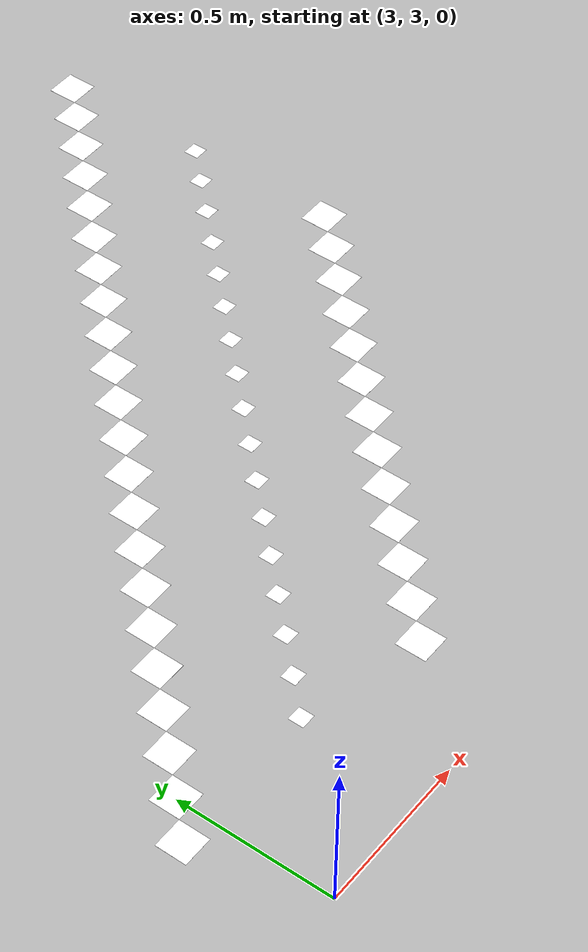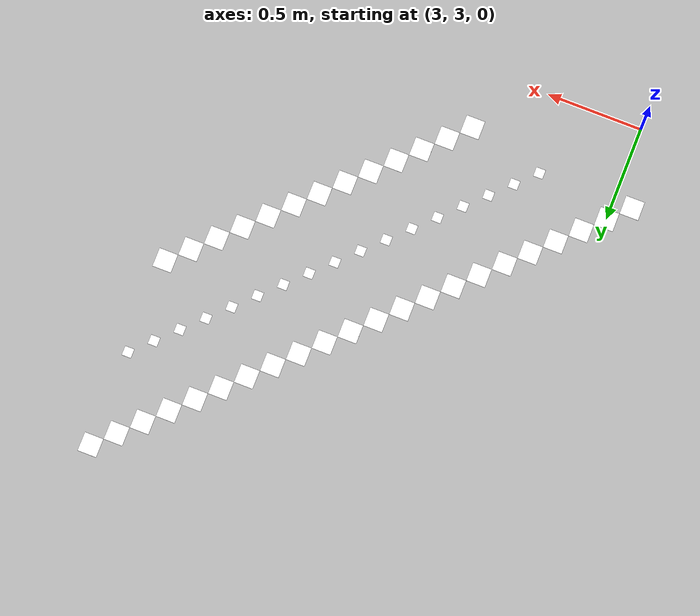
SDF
<sdf version="1.5">
 <model name="AutoNOMOS_mini_intersection">
  <static>true</static>
  <link name="L1_p2.9">
   <pose>2.9 3.4 0.011 0 0 0</pose>
   <visual name="visual_L1_p2.9">
    <cast_shadows>false</cast_shadows>
    <geometry><plane><normal>0 0 1</normal><size>.1 .1</size></plane></geometry>
    <material>
     <ambient>0 0 0 0</ambient>
     <diffuse>1 1 1 0</diffuse>
     <specular>0 0 0 0</specular>
     <emissive>0 0 0 0</emissive>
    </material>
   </visual>
  </link>
  <link name="L1_p3">
   <pose>3 3.5 0.011 0 0 0</pose>
   <visual name="visual_L1_p3">
    <cast_shadows>false</cast_shadows>
    <geometry><plane><normal>0 0 1</normal><size>.1 .1</size></plane></geometry>
    <material>
     <ambient>0 0 0 0</ambient>
     <diffuse>1 1 1 0</diffuse>
     <specular>0 0 0 0</specular>
     <emissive>0 0 0 0</emissive>
    </material>
   </visual>
  </link>
  <link name="L1_p3.1">
   <pose>3.1 3.6 0.011 0 0 0</pose>
   <visual name="visual_L1_p3.1">
    <cast_shadows>false</cast_shadows>
    <geometry><plane><normal>0 0 1</normal><size>.1 .1</size></plane></geometry>
    <material>
     <ambient>0 0 0 0</ambient>
     <diffuse>1 1 1 0</diffuse>
     <specular>0 0 0 0</specular>
     <emissive>0 0 0 0</emissive>
    </material>
   </visual>
  </link>
  <link name="L1_p3.2">
   <pose>3.2 3.7 0.011 0 0 0</pose>
   <visual name="visual_L1_p3.2">
    <cast_shadows>false</cast_shadows>
    <geometry><plane><normal>0 0 1</normal><size>.1 .1</size></plane></geometry>
    <material>
     <ambient>0 0 0 0</ambient>
     <diffuse>1 1 1 0</diffuse>
     <specular>0 0 0 0</specular>
     <emissive>0 0 0 0</emissive>
    </material>
   </visual>
  </link>
  <link name="L1_p3.3">
   <pose>3.3 3.8 0.011 0 0 0</pose>
   <visual name="visual_L1_p3.3">
    <cast_shadows>false</cast_shadows>
    <geometry><plane><normal>0 0 1</normal><size>.1 .1</size></plane></geometry>
    <material>
     <ambient>0 0 0 0</ambient>
     <diffuse>1 1 1 0</diffuse>
     <specular>0 0 0 0</specular>
     <emissive>0 0 0 0</emissive>
    </material>
   </visual>
  </link>
  <link name="L1_p85">
   <pose>3.4 3.4 0.011 0 0 0</pose>
   <visual name="visual_L1_p85">
    <cast_shadows>false</cast_shadows>
    <geometry><plane><normal>0 0 1</normal><size>.05 .05</size></plane></geometry>
    <material>
     <ambient>0 0 0 0</ambient>
     <diffuse>1 1 1 0</diffuse>
     <specular>0 0 0 0</specular>
     <emissive>0 0 0 0</emissive>
    </material>
   </visual>
  </link>
  <link name="L1_p3.4">
   <pose>3.4 3.9 0.011 0 0 0</pose>
   <visual name="visual_L1_p3.4">
    <cast_shadows>false</cast_shadows>
    <geometry><plane><normal>0 0 1</normal><size>.1 .1</size></plane></geometry>
    <material>
     <ambient>0 0 0 0</ambient>
     <diffuse>1 1 1 0</diffuse>
     <specular>0 0 0 0</specular>
     <emissive>0 0 0 0</emissive>
    </material>
   </visual>
  </link>
  <link name="L1_p86">
   <pose>3.5 3.5 0.011 0 0 0</pose>
   <visual name="visual_L1_p86">
    <cast_shadows>false</cast_shadows>
    <geometry><plane><normal>0 0 1</normal><size>.05 .05</size></plane></geometry>
    <material>
     <ambient>0 0 0 0</ambient>
     <diffuse>1 1 1 0</diffuse>
     <specular>0 0 0 0</specular>
     <emissive>0 0 0 0</emissive>
    </material>
   </visual>
  </link>
  <link name="L1_p3.5">
   <pose>3.5 4 0.011 0 0 0</pose>
   <visual name="visual_L1_p3.5">
    <cast_shadows>false</cast_shadows>
    <geometry><plane><normal>0 0 1</normal><size>.1 .1</size></plane></geometry>
    <material>
     <ambient>0 0 0 0</ambient>
     <diffuse>1 1 1 0</diffuse>
     <specular>0 0 0 0</specular>
     <emissive>0 0 0 0</emissive>
    </material>
   </visual>
  </link>
  <link name="L1_p87">
   <pose>3.6 3.6 0.011 0 0 0</pose>
   <visual name="visual_L1_p87">
    <cast_shadows>false</cast_shadows>
    <geometry><plane><normal>0 0 1</normal><size>.05 .05</size></plane></geometry>
    <material>
     <ambient>0 0 0 0</ambient>
     <diffuse>1 1 1 0</diffuse>
     <specular>0 0 0 0</specular>
     <emissive>0 0 0 0</emissive>
    </material>
   </visual>
  </link>
  <link name="L1_p3.6">
   <pose>3.6 4.1 0.011 0 0 0</pose>
   <visual name="visual_L1_p3.6">
    <cast_shadows>false</cast_shadows>
    <geometry><plane><normal>0 0 1</normal><size>.1 .1</size></plane></geometry>
    <material>
     <ambient>0 0 0 0</ambient>
     <diffuse>1 1 1 0</diffuse>
     <specular>0 0 0 0</specular>
     <emissive>0 0 0 0</emissive>
    </material>
   </visual>
  </link>
  <link name="L1_p88">
   <pose>3.7 3.7 0.011 0 0 0</pose>
   <visual name="visual_L1_p88">
    <cast_shadows>false</cast_shadows>
    <geometry><plane><normal>0 0 1</normal><size>.05 .05</size></plane></geometry>
    <material>
     <ambient>0 0 0 0</ambient>
     <diffuse>1 1 1 0</diffuse>
     <specular>0 0 0 0</specular>
     <emissive>0 0 0 0</emissive>
    </material>
   </visual>
  </link>
  <link name="L1_p3.7">
   <pose>3.7 4.2 0.011 0 0 0</pose>
   <visual name="visual_L1_p3.7">
    <cast_shadows>false</cast_shadows>
    <geometry><plane><normal>0 0 1</normal><size>.1 .1</size></plane></geometry>
    <material>
     <ambient>0 0 0 0</ambient>
     <diffuse>1 1 1 0</diffuse>
     <specular>0 0 0 0</specular>
     <emissive>0 0 0 0</emissive>
    </material>
   </visual>
  </link>
  <link name="L1_p89">
   <pose>3.8 3.8 0.011 0 0 0</pose>
   <visual name="visual_L1_p89">
    <cast_shadows>false</cast_shadows>
    <geometry><plane><normal>0 0 1</normal><size>.05 .05</size></plane></geometry>
    <material>
     <ambient>0 0 0 0</ambient>
     <diffuse>1 1 1 0</diffuse>
     <specular>0 0 0 0</specular>
     <emissive>0 0 0 0</emissive>
    </material>
   </visual>
  </link>
  <link name="L1_p3.8">
   <pose>3.8 4.3 0.011 0 0 0</pose>
   <visual name="visual_L1_p3.8">
    <cast_shadows>false</cast_shadows>
    <geometry><plane><normal>0 0 1</normal><size>.1 .1</size></plane></geometry>
    <material>
     <ambient>0 0 0 0</ambient>
     <diffuse>1 1 1 0</diffuse>
     <specular>0 0 0 0</specular>
     <emissive>0 0 0 0</emissive>
    </material>
   </visual>
  </link>
  <link name="L1_p4.3">
   <pose>3.8 3.3 0.011 0 0 0</pose>
   <visual name="visual_L1_p4.3">
    <cast_shadows>false</cast_shadows>
    <geometry><plane><normal>0 0 1</normal><size>.1 .1</size></plane></geometry>
    <material>
     <ambient>0 0 0 0</ambient>
     <diffuse>1 1 1 0</diffuse>
     <specular>0 0 0 0</specular>
     <emissive>0 0 0 0</emissive>
    </material>
   </visual>
  </link>
  <link name="L1_p90">
   <pose>3.9 3.9 0.011 0 0 0</pose>
   <visual name="visual_L1_p90">
    <cast_shadows>false</cast_shadows>
    <geometry><plane><normal>0 0 1</normal><size>.05 .05</size></plane></geometry>
    <material>
     <ambient>0 0 0 0</ambient>
     <diffuse>1 1 1 0</diffuse>
     <specular>0 0 0 0</specular>
     <emissive>0 0 0 0</emissive>
    </material>
   </visual>
  </link>
  <link name="L1_p3.9">
   <pose>3.9 4.4 0.011 0 0 0</pose>
   <visual name="visual_L1_p3.9">
    <cast_shadows>false</cast_shadows>
    <geometry><plane><normal>0 0 1</normal><size>.1 .1</size></plane></geometry>
    <material>
     <ambient>0 0 0 0</ambient>
     <diffuse>1 1 1 0</diffuse>
     <specular>0 0 0 0</specular>
     <emissive>0 0 0 0</emissive>
    </material>
   </visual>
  </link>
  <link name="L1_p4.4">
   <pose>3.9 3.4 0.011 0 0 0</pose>
   <visual name="visual_L1_p4.4">
    <cast_shadows>false</cast_shadows>
    <geometry><plane><normal>0 0 1</normal><size>.1 .1</size></plane></geometry>
    <material>
     <ambient>0 0 0 0</ambient>
     <diffuse>1 1 1 0</diffuse>
     <specular>0 0 0 0</specular>
     <emissive>0 0 0 0</emissive>
    </material>
   </visual>
  </link>
  <link name="L1_p91">
   <pose>4 4 0.011 0 0 0</pose>
   <visual name="visual_L1_p91">
    <cast_shadows>false</cast_shadows>
    <geometry><plane><normal>0 0 1</normal><size>.05 .05</size></plane></geometry>
    <material>
     <ambient>0 0 0 0</ambient>
     <diffuse>1 1 1 0</diffuse>
     <specular>0 0 0 0</specular>
     <emissive>0 0 0 0</emissive>
    </material>
   </visual>
  </link>
  <link name="L1_p4">
   <pose>4 4.5 0.011 0 0 0</pose>
   <visual name="visual_L1_p4">
    <cast_shadows>false</cast_shadows>
    <geometry><plane><normal>0 0 1</normal><size>.1 .1</size></plane></geometry>
    <material>
     <ambient>0 0 0 0</ambient>
     <diffuse>1 1 1 0</diffuse>
     <specular>0 0 0 0</specular>
     <emissive>0 0 0 0</emissive>
    </material>
   </visual>
  </link>
  <link name="L1_p4.5">
   <pose>4 3.5 0.011 0 0 0</pose>
   <visual name="visual_L1_p4.5">
    <cast_shadows>false</cast_shadows>
    <geometry><plane><normal>0 0 1</normal><size>.1 .1</size></plane></geometry>
    <material>
     <ambient>0 0 0 0</ambient>
     <diffuse>1 1 1 0</diffuse>
     <specular>0 0 0 0</specular>
     <emissive>0 0 0 0</emissive>
    </material>
   </visual>
  </link>
  <link name="L1_p92">
   <pose>4.1 4.1 0.011 0 0 0</pose>
   <visual name="visual_L1_p92">
    <cast_shadows>false</cast_shadows>
    <geometry><plane><normal>0 0 1</normal><size>.05 .05</size></plane></geometry>
    <material>
     <ambient>0 0 0 0</ambient>
     <diffuse>1 1 1 0</diffuse>
     <specular>0 0 0 0</specular>
     <emissive>0 0 0 0</emissive>
    </material>
   </visual>
  </link>
  <link name="L1_p4.1">
   <pose>4.1 4.6 0.011 0 0 0</pose>
   <visual name="visual_L1_p4.1">
    <cast_shadows>false</cast_shadows>
    <geometry><plane><normal>0 0 1</normal><size>.1 .1</size></plane></geometry>
    <material>
     <ambient>0 0 0 0</ambient>
     <diffuse>1 1 1 0</diffuse>
     <specular>0 0 0 0</specular>
     <emissive>0 0 0 0</emissive>
    </material>
   </visual>
  </link>
  <link name="L1_p4.6">
   <pose>4.1 3.6 0.011 0 0 0</pose>
   <visual name="visual_L1_p4.6">
    <cast_shadows>false</cast_shadows>
    <geometry><plane><normal>0 0 1</normal><size>.1 .1</size></plane></geometry>
    <material>
     <ambient>0 0 0 0</ambient>
     <diffuse>1 1 1 0</diffuse>
     <specular>0 0 0 0</specular>
     <emissive>0 0 0 0</emissive>
    </material>
   </visual>
  </link>
  <link name="L1_p93">
   <pose>4.2 4.2 0.011 0 0 0</pose>
   <visual name="visual_L1_p93">
    <cast_shadows>false</cast_shadows>
    <geometry><plane><normal>0 0 1</normal><size>.05 .05</size></plane></geometry>
    <material>
     <ambient>0 0 0 0</ambient>
     <diffuse>1 1 1 0</diffuse>
     <specular>0 0 0 0</specular>
     <emissive>0 0 0 0</emissive>
    </material>
   </visual>
  </link>
  <link name="L1_p4.2">
   <pose>4.2 4.7 0.011 0 0 0</pose>
   <visual name="visual_L1_p4.2">
    <cast_shadows>false</cast_shadows>
    <geometry><plane><normal>0 0 1</normal><size>.1 .1</size></plane></geometry>
    <material>
     <ambient>0 0 0 0</ambient>
     <diffuse>1 1 1 0</diffuse>
     <specular>0 0 0 0</specular>
     <emissive>0 0 0 0</emissive>
    </material>
   </visual>
  </link>
  <link name="L1_p4.7">
   <pose>4.2 3.7 0.011 0 0 0</pose>
   <visual name="visual_L1_p4.7">
    <cast_shadows>false</cast_shadows>
    <geometry><plane><normal>0 0 1</normal><size>.1 .1</size></plane></geometry>
    <material>
     <ambient>0 0 0 0</ambient>
     <diffuse>1 1 1 0</diffuse>
     <specular>0 0 0 0</specular>
     <emissive>0 0 0 0</emissive>
    </material>
   </visual>
  </link>
  <link name="L1_p94">
   <pose>4.3 4.3 0.011 0 0 0</pose>
   <visual name="visual_L1_p94">
    <cast_shadows>false</cast_shadows>
    <geometry><plane><normal>0 0 1</normal><size>.05 .05</size></plane></geometry>
    <material>
     <ambient>0 0 0 0</ambient>
     <diffuse>1 1 1 0</diffuse>
     <specular>0 0 0 0</specular>
     <emissive>0 0 0 0</emissive>
    </material>
   </visual>
  </link>
  <link name="L1_p4.3">
   <pose>4.3 4.8 0.011 0 0 0</pose>
   <visual name="visual_L1_p4.3">
    <cast_shadows>false</cast_shadows>
    <geometry><plane><normal>0 0 1</normal><size>.1 .1</size></plane></geometry>
    <material>
     <ambient>0 0 0 0</ambient>
     <diffuse>1 1 1 0</diffuse>
     <specular>0 0 0 0</specular>
     <emissive>0 0 0 0</emissive>
    </material>
   </visual>
  </link>
  <link name="L1_p4.8">
   <pose>4.3 3.8 0.011 0 0 0</pose>
   <visual name="visual_L1_p4.8">
    <cast_shadows>false</cast_shadows>
    <geometry><plane><normal>0 0 1</normal><size>.1 .1</size></plane></geometry>
    <material>
     <ambient>0 0 0 0</ambient>
     <diffuse>1 1 1 0</diffuse>
     <specular>0 0 0 0</specular>
     <emissive>0 0 0 0</emissive>
    </material>
   </visual>
  </link>
  <link name="L1_p95">
   <pose>4.4 4.4 0.011 0 0 0</pose>
   <visual name="visual_L1_p95">
    <cast_shadows>false</cast_shadows>
    <geometry><plane><normal>0 0 1</normal><size>.05 .05</size></plane></geometry>
    <material>
     <ambient>0 0 0 0</ambient>
     <diffuse>1 1 1 0</diffuse>
     <specular>0 0 0 0</specular>
     <emissive>0 0 0 0</emissive>
    </material>
   </visual>
  </link>
  <link name="L1_p4.4">
   <pose>4.4 4.9 0.011 0 0 0</pose>
   <visual name="visual_L1_p4.4">
    <cast_shadows>false</cast_shadows>
    <geometry><plane><normal>0 0 1</normal><size>.1 .1</size></plane></geometry>
    <material>
     <ambient>0 0 0 0</ambient>
     <diffuse>1 1 1 0</diffuse>
     <specular>0 0 0 0</specular>
     <emissive>0 0 0 0</emissive>
    </material>
   </visual>
  </link>
  <link name="L1_p4.9">
   <pose>4.4 3.9 0.011 0 0 0</pose>
   <visual name="visual_L1_p4.9">
    <cast_shadows>false</cast_shadows>
    <geometry><plane><normal>0 0 1</normal><size>.1 .1</size></plane></geometry>
    <material>
     <ambient>0 0 0 0</ambient>
     <diffuse>1 1 1 0</diffuse>
     <specular>0 0 0 0</specular>
     <emissive>0 0 0 0</emissive>
    </material>
   </visual>
  </link>
  <link name="L1_p96">
   <pose>4.5 4.5 0.011 0 0 0</pose>
   <visual name="visual_L1_p96">
    <cast_shadows>false</cast_shadows>
    <geometry><plane><normal>0 0 1</normal><size>.05 .05</size></plane></geometry>
    <material>
     <ambient>0 0 0 0</ambient>
     <diffuse>1 1 1 0</diffuse>
     <specular>0 0 0 0</specular>
     <emissive>0 0 0 0</emissive>
    </material>
   </visual>
  </link>
  <link name="L1_p4.5">
   <pose>4.5 5 0.011 0 0 0</pose>
   <visual name="visual_L1_p4.5">
    <cast_shadows>false</cast_shadows>
    <geometry><plane><normal>0 0 1</normal><size>.1 .1</size></plane></geometry>
    <material>
     <ambient>0 0 0 0</ambient>
     <diffuse>1 1 1 0</diffuse>
     <specular>0 0 0 0</specular>
     <emissive>0 0 0 0</emissive>
    </material>
   </visual>
  </link>
  <link name="L1_p5">
   <pose>4.5 4 0.011 0 0 0</pose>
   <visual name="visual_L1_p5">
    <cast_shadows>false</cast_shadows>
    <geometry><plane><normal>0 0 1</normal><size>.1 .1</size></plane></geometry>
    <material>
     <ambient>0 0 0 0</ambient>
     <diffuse>1 1 1 0</diffuse>
     <specular>0 0 0 0</specular>
     <emissive>0 0 0 0</emissive>
    </material>
   </visual>
  </link>
  <link name="L1_p97">
   <pose>4.6 4.6 0.011 0 0 0</pose>
   <visual name="visual_L1_p97">
    <cast_shadows>false</cast_shadows>
    <geometry><plane><normal>0 0 1</normal><size>.05 .05</size></plane></geometry>
    <material>
     <ambient>0 0 0 0</ambient>
     <diffuse>1 1 1 0</diffuse>
     <specular>0 0 0 0</specular>
     <emissive>0 0 0 0</emissive>
    </material>
   </visual>
  </link>
  <link name="L1_p4.6">
   <pose>4.6 5.1 0.011 0 0 0</pose>
   <visual name="visual_L1_p4.6">
    <cast_shadows>false</cast_shadows>
    <geometry><plane><normal>0 0 1</normal><size>.1 .1</size></plane></geometry>
    <material>
     <ambient>0 0 0 0</ambient>
     <diffuse>1 1 1 0</diffuse>
     <specular>0 0 0 0</specular>
     <emissive>0 0 0 0</emissive>
    </material>
   </visual>
  </link>
  <link name="L1_p5.1">
   <pose>4.6 4.1 0.011 0 0 0</pose>
   <visual name="visual_L1_p5.1">
    <cast_shadows>false</cast_shadows>
    <geometry><plane><normal>0 0 1</normal><size>.1 .1</size></plane></geometry>
    <material>
     <ambient>0 0 0 0</ambient>
     <diffuse>1 1 1 0</diffuse>
     <specular>0 0 0 0</specular>
     <emissive>0 0 0 0</emissive>
    </material>
   </visual>
  </link>
  <link name="L1_p98">
   <pose>4.7 4.7 0.011 0 0 0</pose>
   <visual name="visual_L1_p98">
    <cast_shadows>false</cast_shadows>
    <geometry><plane><normal>0 0 1</normal><size>.05 .05</size></plane></geometry>
    <material>
     <ambient>0 0 0 0</ambient>
     <diffuse>1 1 1 0</diffuse>
     <specular>0 0 0 0</specular>
     <emissive>0 0 0 0</emissive>
    </material>
   </visual>
  </link>
  <link name="L1_p4.7">
   <pose>4.7 5.2 0.011 0 0 0</pose>
   <visual name="visual_L1_p4.7">
    <cast_shadows>false</cast_shadows>
    <geometry><plane><normal>0 0 1</normal><size>.1 .1</size></plane></geometry>
    <material>
     <ambient>0 0 0 0</ambient>
     <diffuse>1 1 1 0</diffuse>
     <specular>0 0 0 0</specular>
     <emissive>0 0 0 0</emissive>
    </material>
   </visual>
  </link>
  <link name="L1_p5.2">
   <pose>4.7 4.2 0.011 0 0 0</pose>
   <visual name="visual_L1_p5.2">
    <cast_shadows>false</cast_shadows>
    <geometry><plane><normal>0 0 1</normal><size>.1 .1</size></plane></geometry>
    <material>
     <ambient>0 0 0 0</ambient>
     <diffuse>1 1 1 0</diffuse>
     <specular>0 0 0 0</specular>
     <emissive>0 0 0 0</emissive>
    </material>
   </visual>
  </link>
  <link name="L1_p99">
   <pose>4.8 4.8 0.011 0 0 0</pose>
   <visual name="visual_L1_p99">
    <cast_shadows>false</cast_shadows>
    <geometry><plane><normal>0 0 1</normal><size>.05 .05</size></plane></geometry>
    <material>
     <ambient>0 0 0 0</ambient>
     <diffuse>1 1 1 0</diffuse>
     <specular>0 0 0 0</specular>
     <emissive>0 0 0 0</emissive>
    </material>
   </visual>
  </link>
  <link name="L1_p4.8">
   <pose>4.8 5.3 0.011 0 0 0</pose>
   <visual name="visual_L1_p4.8">
    <cast_shadows>false</cast_shadows>
    <geometry><plane><normal>0 0 1</normal><size>.1 .1</size></plane></geometry>
    <material>
     <ambient>0 0 0 0</ambient>
     <diffuse>1 1 1 0</diffuse>
     <specular>0 0 0 0</specular>
     <emissive>0 0 0 0</emissive>
    </material>
   </visual>
  </link>
  <link name="L1_p5.3">
   <pose>4.8 4.3 0.011 0 0 0</pose>
   <visual name="visual_L1_p5.3">
    <cast_shadows>false</cast_shadows>
    <geometry><plane><normal>0 0 1</normal><size>.1 .1</size></plane></geometry>
    <material>
     <ambient>0 0 0 0</ambient>
     <diffuse>1 1 1 0</diffuse>
     <specular>0 0 0 0</specular>
     <emissive>0 0 0 0</emissive>
    </material>
   </visual>
  </link>
  <link name="L1_p100">
   <pose>4.9 4.9 0.011 0 0 0</pose>
   <visual name="visual_L1_p100">
    <cast_shadows>false</cast_shadows>
    <geometry><plane><normal>0 0 1</normal><size>.05 .05</size></plane></geometry>
    <material>
     <ambient>0 0 0 0</ambient>
     <diffuse>1 1 1 0</diffuse>
     <specular>0 0 0 0</specular>
     <emissive>0 0 0 0</emissive>
    </material>
   </visual>
  </link>
  <link name="L1_p4.9">
   <pose>4.9 5.4 0.011 0 0 0</pose>
   <visual name="visual_L1_p4.9">
    <cast_shadows>false</cast_shadows>
    <geometry><plane><normal>0 0 1</normal><size>.1 .1</size></plane></geometry>
    <material>
     <ambient>0 0 0 0</ambient>
     <diffuse>1 1 1 0</diffuse>
     <specular>0 0 0 0</specular>
     <emissive>0 0 0 0</emissive>
    </material>
   </visual>
  </link>
  <link name="L1_p5.4">
   <pose>4.9 4.4 0.011 0 0 0</pose>
   <visual name="visual_L1_p5.4">
    <cast_shadows>false</cast_shadows>
    <geometry><plane><normal>0 0 1</normal><size>.1 .1</size></plane></geometry>
    <material>
     <ambient>0 0 0 0</ambient>
     <diffuse>1 1 1 0</diffuse>
     <specular>0 0 0 0</specular>
     <emissive>0 0 0 0</emissive>
    </material>
   </visual>
  </link>
  <link name="L1_p101">
   <pose>5 5 0.011 0 0 0</pose>
   <visual name="visual_L1_p101">
    <cast_shadows>false</cast_shadows>
    <geometry><plane><normal>0 0 1</normal><size>.05 .05</size></plane></geometry>
    <material>
     <ambient>0 0 0 0</ambient>
     <diffuse>1 1 1 0</diffuse>
     <specular>0 0 0 0</specular>
     <emissive>0 0 0 0</emissive>
    </material>
   </visual>
  </link>
  <link name="L1_p5.">
   <pose>5 5.5 0.011 0 0 0</pose>
   <visual name="visual_L1_p5.">
    <cast_shadows>false</cast_shadows>
    <geometry><plane><normal>0 0 1</normal><size>.1 .1</size></plane></geometry>
    <material>
     <ambient>0 0 0 0</ambient>
     <diffuse>1 1 1 0</diffuse>
     <specular>0 0 0 0</specular>
     <emissive>0 0 0 0</emissive>
    </material>
   </visual>
  </link>
  <link name="L1_p5.5">
   <pose>5 4.5 0.011 0 0 0</pose>
   <visual name="visual_L1_p5.5">
    <cast_shadows>false</cast_shadows>
    <geometry><plane><normal>0 0 1</normal><size>.1 .1</size></plane></geometry>
    <material>
     <ambient>0 0 0 0</ambient>
     <diffuse>1 1 1 0</diffuse>
     <specular>0 0 0 0</specular>
     <emissive>0 0 0 0</emissive>
    </material>
   </visual>
  </link>
 </model>
</sdf>
